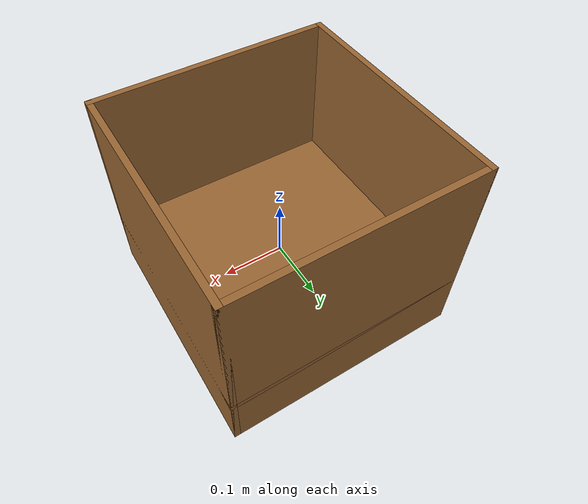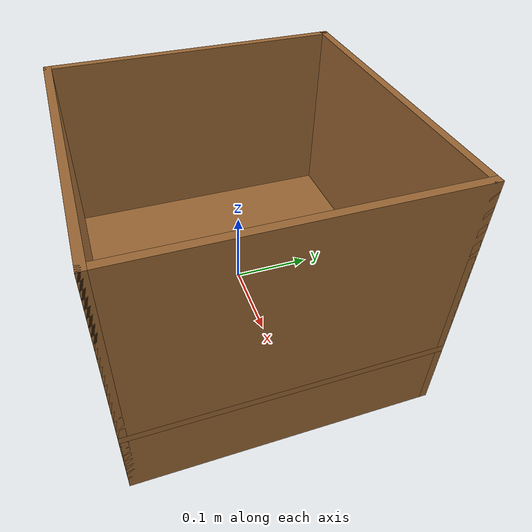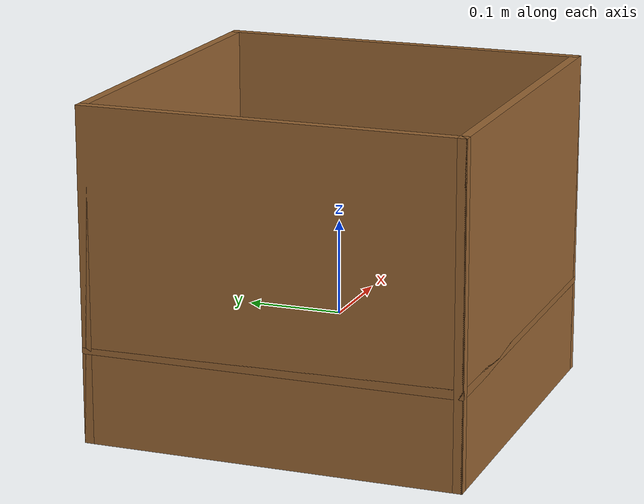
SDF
<?xml version="1.0" ?>
<sdf version="1.5">
  <model name="basket">
    <static>true</static>

    <!-- Base -->
    <link name="base">
      <collision name="collision">
        <geometry>
          <box>
            <size>0.40 0.40 0.01</size>
          </box>
        </geometry>
      </collision>
      <visual name="visual">
        <geometry>
          <box>
            <size>0.40 0.40 0.01</size>
          </box>
        </geometry>
        <material>
          <ambient>0.6 0.4 0.2 1</ambient>
          <diffuse>0.6 0.4 0.2 1</diffuse>
        </material>
      </visual>
    </link>

    <!-- Front wall -->
    <link name="wall_front">
      <pose>0.195 0 0.075 0 0 0</pose>
      <collision name="collision">
        <geometry>
          <box>
            <size>0.01 0.40 0.35</size>
          </box>
        </geometry>
      </collision>
      <visual name="visual">
        <geometry>
          <box>
            <size>0.01 0.40 0.35</size>
          </box>
        </geometry>
        <material>
          <ambient>0.6 0.4 0.2 1</ambient>
          <diffuse>0.6 0.4 0.2 1</diffuse>
        </material>
      </visual>
    </link>

    <!-- Back wall -->
    <link name="wall_back">
      <pose>-0.195 0 0.075 0 0 0</pose>
      <collision name="collision">
        <geometry>
          <box>
            <size>0.01 0.40 0.35</size>
          </box>
        </geometry>
      </collision>
      <visual name="visual">
        <geometry>
          <box>
            <size>0.01 0.40 0.35</size>
          </box>
        </geometry>
        <material>
          <ambient>0.6 0.4 0.2 1</ambient>
          <diffuse>0.6 0.4 0.2 1</diffuse>
        </material>
      </visual>
    </link>

    <!-- Left wall -->
    <link name="wall_left">
      <pose>0 -0.195 0.075 0 0 0</pose>
      <collision name="collision">
        <geometry>
          <box>
            <size>0.40 0.01 0.35</size>
          </box>
        </geometry>
      </collision>
      <visual name="visual">
        <geometry>
          <box>
            <size>0.40 0.01 0.35</size>
          </box>
        </geometry>
        <material>
          <ambient>0.6 0.4 0.2 1</ambient>
          <diffuse>0.6 0.4 0.2 1</diffuse>
        </material>
      </visual>
    </link>

    <!-- Right wall -->
    <link name="wall_right">
      <pose>0 0.195 0.075 0 0 0</pose>
      <collision name="collision">
        <geometry>
          <box>
            <size>0.40 0.01 0.35</size>
          </box>
        </geometry>
      </collision>
      <visual name="visual">
        <geometry>
          <box>
            <size>0.40 0.01 0.35</size>
          </box>
        </geometry>
        <material>
          <ambient>0.6 0.4 0.2 1</ambient>
          <diffuse>0.6 0.4 0.2 1</diffuse>
        </material>
      </visual>
    </link>
  </model>
</sdf>
